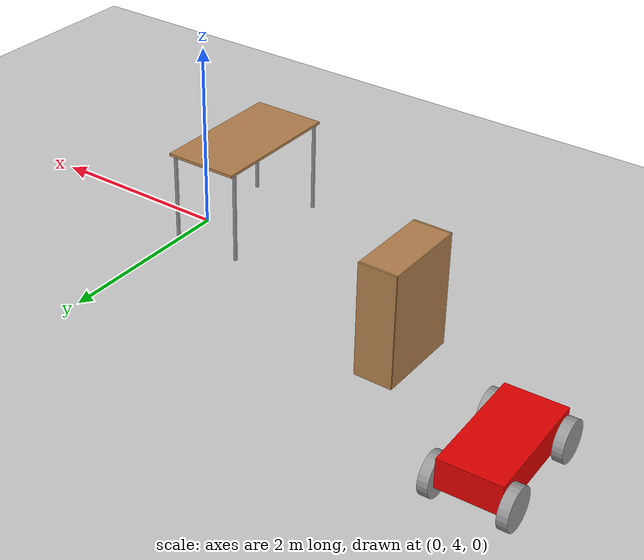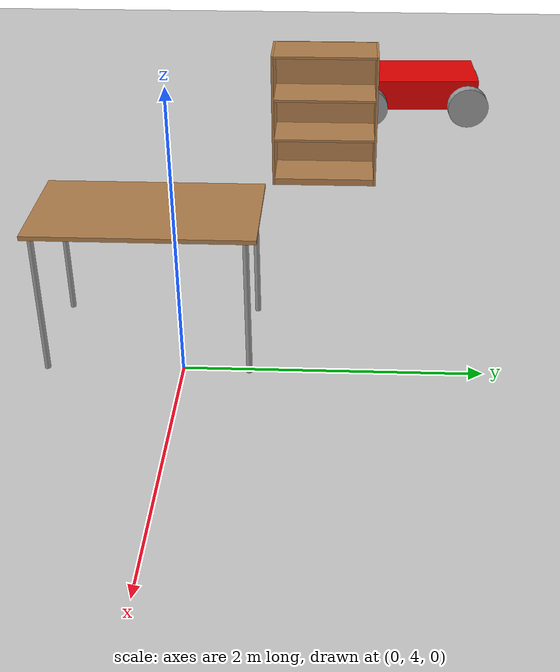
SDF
<sdf version="1.6">
 <world name="office">
  <model name="ground_plane">
   <static>1</static>
   <link name="link">
    <collision name="collision">
     <geometry><plane><normal>0 0 1</normal><size>100 100</size></plane></geometry>
     <surface><friction><ode><mu>100</mu><mu2>50</mu2></ode></friction></surface>
    </collision>
    <visual name="visual">
     <cast_shadows>0</cast_shadows>
     <geometry><plane><normal>0 0 1</normal><size>100 100</size></plane></geometry>
     <material>
      <script><uri>file://media/materials/scripts/gazebo.material</uri><name>Gazebo/Grey</name></script>
     </material>
    </visual>
   </link>
  </model>
  <model name="car">
   <pose>-4.53314 5.76816 0.211113 2e-06 1e-06 -1.53251</pose>
   <link name="link_0">
    <pose>0 -2e-06 0.088889 0 -0 0</pose>
    <inertial>
     <mass>1</mass>
     <inertia>
      <ixx>0.166667</ixx>
      <ixy>0</ixy>
      <ixz>0</ixz>
      <iyy>0.166667</iyy>
      <iyz>0</iyz>
      <izz>0.166667</izz>
     </inertia>
    </inertial>
    <visual name="visual">
     <geometry><box><size>1.2 0.6 0.3</size></box></geometry>
     <material>
      <lighting>1</lighting>
      <script><uri>file://media/materials/scripts/gazebo.material</uri><name>Gazebo/Grey</name></script>
      <shader type="pixel"><normal_map>__default__</normal_map></shader>
      <ambient>0.9 0 0 1</ambient>
      <diffuse>0.7 0.7 0.7 1</diffuse>
      <specular>0.01 0.01 0.01 1</specular>
      <emissive>0 0 0 1</emissive>
     </material>
    </visual>
    <collision name="collision">
     <geometry><box><size>1.2 0.6 0.3</size></box></geometry>
     <surface>
      <friction>
       <ode><mu>1</mu><mu2>1</mu2><fdir1>0 0 0</fdir1><slip1>0</slip1><slip2>0</slip2></ode>
       <torsional>
        <coefficient>1</coefficient>
        <patch_radius>0</patch_radius>
        <surface_radius>0</surface_radius>
        <use_patch_radius>1</use_patch_radius>
        <ode><slip>0</slip></ode>
       </torsional>
      </friction>
      <bounce><restitution_coefficient>0</restitution_coefficient><threshold>1e+06</threshold></bounce>
      <contact>
       <collide_without_contact>0</collide_without_contact>
       <collide_without_contact_bitmask>1</collide_without_contact_bitmask>
       <collide_bitmask>1</collide_bitmask>
       <ode>
        <soft_cfm>0</soft_cfm>
        <soft_erp>0.2</soft_erp>
        <kp>1e+13</kp>
        <kd>1</kd>
        <max_vel>0.01</max_vel>
        <min_depth>0</min_depth>
       </ode>
       <bullet>
        <split_impulse>1</split_impulse>
        <split_impulse_penetration_threshold>-0.01</split_impulse_penetration_threshold>
        <soft_cfm>0</soft_cfm>
        <soft_erp>0.2</soft_erp>
        <kp>1e+13</kp>
        <kd>1</kd>
       </bullet>
      </contact>
     </surface>
    </collision>
   </link>
   <link name="link_1">
    <pose>-0.5 -0.250002 -0.011111 0 -0 0</pose>
    <inertial>
     <mass>1</mass>
     <inertia>
      <ixx>0.166667</ixx>
      <ixy>0</ixy>
      <ixz>0</ixz>
      <iyy>0.166667</iyy>
      <iyz>0</iyz>
      <izz>0.166667</izz>
     </inertia>
    </inertial>
    <visual name="visual">
     <geometry><box><size>0.1 0.1 0.1</size></box></geometry>
     <material>
      <lighting>1</lighting>
      <script><uri>file://media/materials/scripts/gazebo.material</uri><name>Gazebo/Grey</name></script>
      <shader type="pixel"><normal_map>__default__</normal_map></shader>
      <ambient>0.01 0.01 0.01 1</ambient>
      <diffuse>0.7 0.7 0.7 1</diffuse>
      <specular>0.01 0.01 0.01 1</specular>
      <emissive>0 0 0 1</emissive>
     </material>
    </visual>
    <collision name="collision">
     <geometry><box><size>0.1 0.1 0.1</size></box></geometry>
     <surface>
      <friction>
       <ode><mu>1</mu><mu2>1</mu2><fdir1>0 0 0</fdir1><slip1>0</slip1><slip2>0</slip2></ode>
       <torsional>
        <coefficient>1</coefficient>
        <patch_radius>0</patch_radius>
        <surface_radius>0</surface_radius>
        <use_patch_radius>1</use_patch_radius>
        <ode><slip>0</slip></ode>
       </torsional>
      </friction>
      <bounce><restitution_coefficient>0</restitution_coefficient><threshold>1e+06</threshold></bounce>
      <contact>
       <collide_without_contact>0</collide_without_contact>
       <collide_without_contact_bitmask>1</collide_without_contact_bitmask>
       <collide_bitmask>1</collide_bitmask>
       <ode>
        <soft_cfm>0</soft_cfm>
        <soft_erp>0.2</soft_erp>
        <kp>1e+13</kp>
        <kd>1</kd>
        <max_vel>0.01</max_vel>
        <min_depth>0</min_depth>
       </ode>
       <bullet>
        <split_impulse>1</split_impulse>
        <split_impulse_penetration_threshold>-0.01</split_impulse_penetration_threshold>
        <soft_cfm>0</soft_cfm>
        <soft_erp>0.2</soft_erp>
        <kp>1e+13</kp>
        <kd>1</kd>
       </bullet>
      </contact>
     </surface>
    </collision>
   </link>
   <link name="link_1_clone">
    <pose>-0.5 0.249998 -0.011111 0 -0 0</pose>
    <inertial>
     <mass>1</mass>
     <inertia>
      <ixx>0.166667</ixx>
      <ixy>0</ixy>
      <ixz>0</ixz>
      <iyy>0.166667</iyy>
      <iyz>0</iyz>
      <izz>0.166667</izz>
     </inertia>
    </inertial>
    <visual name="visual">
     <geometry><box><size>0.1 0.1 0.1</size></box></geometry>
     <material>
      <lighting>1</lighting>
      <script><uri>file://media/materials/scripts/gazebo.material</uri><name>Gazebo/Grey</name></script>
      <shader type="pixel"><normal_map>__default__</normal_map></shader>
      <ambient>0.01 0.01 0.01 1</ambient>
      <diffuse>0.7 0.7 0.7 1</diffuse>
      <specular>0.01 0.01 0.01 1</specular>
      <emissive>0 0 0 1</emissive>
     </material>
    </visual>
    <collision name="collision">
     <geometry><box><size>0.1 0.1 0.1</size></box></geometry>
     <surface>
      <friction>
       <ode><mu>1</mu><mu2>1</mu2><fdir1>0 0 0</fdir1><slip1>0</slip1><slip2>0</slip2></ode>
       <torsional>
        <coefficient>1</coefficient>
        <patch_radius>0</patch_radius>
        <surface_radius>0</surface_radius>
        <use_patch_radius>1</use_patch_radius>
        <ode><slip>0</slip></ode>
       </torsional>
      </friction>
      <bounce><restitution_coefficient>0</restitution_coefficient><threshold>1e+06</threshold></bounce>
      <contact>
       <collide_without_contact>0</collide_without_contact>
       <collide_without_contact_bitmask>1</collide_without_contact_bitmask>
       <collide_bitmask>1</collide_bitmask>
       <ode>
        <soft_cfm>0</soft_cfm>
        <soft_erp>0.2</soft_erp>
        <kp>1e+13</kp>
        <kd>1</kd>
        <max_vel>0.01</max_vel>
        <min_depth>0</min_depth>
       </ode>
       <bullet>
        <split_impulse>1</split_impulse>
        <split_impulse_penetration_threshold>-0.01</split_impulse_penetration_threshold>
        <soft_cfm>0</soft_cfm>
        <soft_erp>0.2</soft_erp>
        <kp>1e+13</kp>
        <kd>1</kd>
       </bullet>
      </contact>
     </surface>
    </collision>
   </link>
   <link name="link_1_clone_0">
    <pose>0.5 -0.250002 -0.011111 0 -0 0</pose>
    <inertial>
     <mass>1</mass>
     <inertia>
      <ixx>0.166667</ixx>
      <ixy>0</ixy>
      <ixz>0</ixz>
      <iyy>0.166667</iyy>
      <iyz>0</iyz>
      <izz>0.166667</izz>
     </inertia>
    </inertial>
    <visual name="visual">
     <geometry><box><size>0.1 0.1 0.1</size></box></geometry>
     <material>
      <lighting>1</lighting>
      <script><uri>file://media/materials/scripts/gazebo.material</uri><name>Gazebo/Grey</name></script>
      <shader type="pixel"><normal_map>__default__</normal_map></shader>
      <ambient>0.01 0.01 0.01 1</ambient>
      <diffuse>0.7 0.7 0.7 1</diffuse>
      <specular>0.01 0.01 0.01 1</specular>
      <emissive>0 0 0 1</emissive>
     </material>
    </visual>
    <collision name="collision">
     <geometry><box><size>0.1 0.1 0.1</size></box></geometry>
     <surface>
      <friction>
       <ode><mu>1</mu><mu2>1</mu2><fdir1>0 0 0</fdir1><slip1>0</slip1><slip2>0</slip2></ode>
       <torsional>
        <coefficient>1</coefficient>
        <patch_radius>0</patch_radius>
        <surface_radius>0</surface_radius>
        <use_patch_radius>1</use_patch_radius>
        <ode><slip>0</slip></ode>
       </torsional>
      </friction>
      <bounce><restitution_coefficient>0</restitution_coefficient><threshold>1e+06</threshold></bounce>
      <contact>
       <collide_without_contact>0</collide_without_contact>
       <collide_without_contact_bitmask>1</collide_without_contact_bitmask>
       <collide_bitmask>1</collide_bitmask>
       <ode>
        <soft_cfm>0</soft_cfm>
        <soft_erp>0.2</soft_erp>
        <kp>1e+13</kp>
        <kd>1</kd>
        <max_vel>0.01</max_vel>
        <min_depth>0</min_depth>
       </ode>
       <bullet>
        <split_impulse>1</split_impulse>
        <split_impulse_penetration_threshold>-0.01</split_impulse_penetration_threshold>
        <soft_cfm>0</soft_cfm>
        <soft_erp>0.2</soft_erp>
        <kp>1e+13</kp>
        <kd>1</kd>
       </bullet>
      </contact>
     </surface>
    </collision>
   </link>
   <link name="link_1_clone_1">
    <pose>0.5 0.249998 -0.011111 0 -0 0</pose>
    <inertial>
     <mass>1</mass>
     <inertia>
      <ixx>0.166667</ixx>
      <ixy>0</ixy>
      <ixz>0</ixz>
      <iyy>0.166667</iyy>
      <iyz>0</iyz>
      <izz>0.166667</izz>
     </inertia>
    </inertial>
    <visual name="visual">
     <geometry><box><size>0.1 0.1 0.1</size></box></geometry>
     <material>
      <lighting>1</lighting>
      <script><uri>file://media/materials/scripts/gazebo.material</uri><name>Gazebo/Grey</name></script>
      <shader type="pixel"><normal_map>__default__</normal_map></shader>
      <ambient>0.01 0.01 0.01 1</ambient>
      <diffuse>0.7 0.7 0.7 1</diffuse>
      <specular>0.01 0.01 0.01 1</specular>
      <emissive>0 0 0 1</emissive>
     </material>
    </visual>
    <collision name="collision">
     <geometry><box><size>0.1 0.1 0.1</size></box></geometry>
     <surface>
      <friction>
       <ode><mu>1</mu><mu2>1</mu2><fdir1>0 0 0</fdir1><slip1>0</slip1><slip2>0</slip2></ode>
       <torsional>
        <coefficient>1</coefficient>
        <patch_radius>0</patch_radius>
        <surface_radius>0</surface_radius>
        <use_patch_radius>1</use_patch_radius>
        <ode><slip>0</slip></ode>
       </torsional>
      </friction>
      <bounce><restitution_coefficient>0</restitution_coefficient><threshold>1e+06</threshold></bounce>
      <contact>
       <collide_without_contact>0</collide_without_contact>
       <collide_without_contact_bitmask>1</collide_without_contact_bitmask>
       <collide_bitmask>1</collide_bitmask>
       <ode>
        <soft_cfm>0</soft_cfm>
        <soft_erp>0.2</soft_erp>
        <kp>1e+13</kp>
        <kd>1</kd>
        <max_vel>0.01</max_vel>
        <min_depth>0</min_depth>
       </ode>
       <bullet>
        <split_impulse>1</split_impulse>
        <split_impulse_penetration_threshold>-0.01</split_impulse_penetration_threshold>
        <soft_cfm>0</soft_cfm>
        <soft_erp>0.2</soft_erp>
        <kp>1e+13</kp>
        <kd>1</kd>
       </bullet>
      </contact>
     </surface>
    </collision>
   </link>
   <link name="link_2">
    <pose>-0.5 -0.350002 -0.011111 0 -0 0</pose>
    <inertial>
     <mass>1</mass>
     <inertia><ixx>0.145833</ixx><ixy>0</ixy><ixz>0</ixz><iyy>0.145833</iyy><iyz>0</iyz><izz>0.125</izz></inertia>
    </inertial>
    <visual name="visual">
     <pose>0 0 0 1.5707 -0 0</pose>
     <geometry><cylinder><radius>0.2</radius><length>0.1</length></cylinder></geometry>
     <material>
      <lighting>1</lighting>
      <script><uri>file://media/materials/scripts/gazebo.material</uri><name>Gazebo/Grey</name></script>
      <shader type="pixel"><normal_map>__default__</normal_map></shader>
      <ambient>0.01 0.01 0.01 1</ambient>
      <diffuse>0.7 0.7 0.7 1</diffuse>
      <specular>0.01 0.01 0.01 1</specular>
      <emissive>0 0 0 1</emissive>
     </material>
    </visual>
    <collision name="collision">
     <pose>0 0 0 1.5707 -0 0</pose>
     <geometry><cylinder><radius>0.2</radius><length>0.1</length></cylinder></geometry>
     <surface>
      <friction>
       <ode><mu>1</mu><mu2>1</mu2><fdir1>0 0 0</fdir1><slip1>0</slip1><slip2>0</slip2></ode>
       <torsional>
        <coefficient>1</coefficient>
        <patch_radius>0</patch_radius>
        <surface_radius>0</surface_radius>
        <use_patch_radius>1</use_patch_radius>
        <ode><slip>0</slip></ode>
       </torsional>
      </friction>
      <bounce><restitution_coefficient>0</restitution_coefficient><threshold>1e+06</threshold></bounce>
      <contact>
       <collide_without_contact>0</collide_without_contact>
       <collide_without_contact_bitmask>1</collide_without_contact_bitmask>
       <collide_bitmask>1</collide_bitmask>
       <ode>
        <soft_cfm>0</soft_cfm>
        <soft_erp>0.2</soft_erp>
        <kp>1e+13</kp>
        <kd>1</kd>
        <max_vel>0.01</max_vel>
        <min_depth>0</min_depth>
       </ode>
       <bullet>
        <split_impulse>1</split_impulse>
        <split_impulse_penetration_threshold>-0.01</split_impulse_penetration_threshold>
        <soft_cfm>0</soft_cfm>
        <soft_erp>0.2</soft_erp>
        <kp>1e+13</kp>
        <kd>1</kd>
       </bullet>
      </contact>
     </surface>
    </collision>
   </link>
   <link name="link_2_clone">
    <pose>-0.5 0.349998 -0.011111 0 -0 0</pose>
    <inertial>
     <mass>1</mass>
     <inertia><ixx>0.145833</ixx><ixy>0</ixy><ixz>0</ixz><iyy>0.145833</iyy><iyz>0</iyz><izz>0.125</izz></inertia>
    </inertial>
    <visual name="visual">
     <pose>0 0 0 1.5707 -0 0</pose>
     <geometry><cylinder><radius>0.2</radius><length>0.1</length></cylinder></geometry>
     <material>
      <lighting>1</lighting>
      <script><uri>file://media/materials/scripts/gazebo.material</uri><name>Gazebo/Grey</name></script>
      <shader type="pixel"><normal_map>__default__</normal_map></shader>
      <ambient>0.01 0.01 0.01 1</ambient>
      <diffuse>0.7 0.7 0.7 1</diffuse>
      <specular>0.01 0.01 0.01 1</specular>
      <emissive>0 0 0 1</emissive>
     </material>
    </visual>
    <collision name="collision">
     <pose>0 0 0 1.5707 -0 0</pose>
     <geometry><cylinder><radius>0.2</radius><length>0.1</length></cylinder></geometry>
     <surface>
      <friction>
       <ode><mu>1</mu><mu2>1</mu2><fdir1>0 0 0</fdir1><slip1>0</slip1><slip2>0</slip2></ode>
       <torsional>
        <coefficient>1</coefficient>
        <patch_radius>0</patch_radius>
        <surface_radius>0</surface_radius>
        <use_patch_radius>1</use_patch_radius>
        <ode><slip>0</slip></ode>
       </torsional>
      </friction>
      <bounce><restitution_coefficient>0</restitution_coefficient><threshold>1e+06</threshold></bounce>
      <contact>
       <collide_without_contact>0</collide_without_contact>
       <collide_without_contact_bitmask>1</collide_without_contact_bitmask>
       <collide_bitmask>1</collide_bitmask>
       <ode>
        <soft_cfm>0</soft_cfm>
        <soft_erp>0.2</soft_erp>
        <kp>1e+13</kp>
        <kd>1</kd>
        <max_vel>0.01</max_vel>
        <min_depth>0</min_depth>
       </ode>
       <bullet>
        <split_impulse>1</split_impulse>
        <split_impulse_penetration_threshold>-0.01</split_impulse_penetration_threshold>
        <soft_cfm>0</soft_cfm>
        <soft_erp>0.2</soft_erp>
        <kp>1e+13</kp>
        <kd>1</kd>
       </bullet>
      </contact>
     </surface>
    </collision>
   </link>
   <link name="link_2_clone_0">
    <pose>0.5 -0.350021 -0.011111 0 -0 0</pose>
    <inertial>
     <mass>1</mass>
     <inertia><ixx>0.145833</ixx><ixy>0</ixy><ixz>0</ixz><iyy>0.145833</iyy><iyz>0</iyz><izz>0.125</izz></inertia>
    </inertial>
    <visual name="visual">
     <pose>0 0 0 1.5707 -0 0</pose>
     <geometry><cylinder><radius>0.2</radius><length>0.1</length></cylinder></geometry>
     <material>
      <lighting>1</lighting>
      <script><uri>file://media/materials/scripts/gazebo.material</uri><name>Gazebo/Grey</name></script>
      <shader type="pixel"><normal_map>__default__</normal_map></shader>
      <ambient>0.01 0.01 0.01 1</ambient>
      <diffuse>0.7 0.7 0.7 1</diffuse>
      <specular>0.01 0.01 0.01 1</specular>
      <emissive>0 0 0 1</emissive>
     </material>
    </visual>
    <collision name="collision">
     <pose>0 0 0 1.5707 -0 0</pose>
     <geometry><cylinder><radius>0.2</radius><length>0.1</length></cylinder></geometry>
     <surface>
      <friction>
       <ode><mu>1</mu><mu2>1</mu2><fdir1>0 0 0</fdir1><slip1>0</slip1><slip2>0</slip2></ode>
       <torsional>
        <coefficient>1</coefficient>
        <patch_radius>0</patch_radius>
        <surface_radius>0</surface_radius>
        <use_patch_radius>1</use_patch_radius>
        <ode><slip>0</slip></ode>
       </torsional>
      </friction>
      <bounce><restitution_coefficient>0</restitution_coefficient><threshold>1e+06</threshold></bounce>
      <contact>
       <collide_without_contact>0</collide_without_contact>
       <collide_without_contact_bitmask>1</collide_without_contact_bitmask>
       <collide_bitmask>1</collide_bitmask>
       <ode>
        <soft_cfm>0</soft_cfm>
        <soft_erp>0.2</soft_erp>
        <kp>1e+13</kp>
        <kd>1</kd>
        <max_vel>0.01</max_vel>
        <min_depth>0</min_depth>
       </ode>
       <bullet>
        <split_impulse>1</split_impulse>
        <split_impulse_penetration_threshold>-0.01</split_impulse_penetration_threshold>
        <soft_cfm>0</soft_cfm>
        <soft_erp>0.2</soft_erp>
        <kp>1e+13</kp>
        <kd>1</kd>
       </bullet>
      </contact>
     </surface>
    </collision>
   </link>
   <link name="link_2_clone_1">
    <pose>0.5 0.350017 -0.011111 0 -0 0</pose>
    <inertial>
     <mass>1</mass>
     <inertia><ixx>0.145833</ixx><ixy>0</ixy><ixz>0</ixz><iyy>0.145833</iyy><iyz>0</iyz><izz>0.125</izz></inertia>
    </inertial>
    <visual name="visual">
     <pose>0 0 0 1.5707 -0 0</pose>
     <geometry><cylinder><radius>0.2</radius><length>0.1</length></cylinder></geometry>
     <material>
      <lighting>1</lighting>
      <script><uri>file://media/materials/scripts/gazebo.material</uri><name>Gazebo/Grey</name></script>
      <shader type="pixel"><normal_map>__default__</normal_map></shader>
      <ambient>0.01 0.01 0.01 1</ambient>
      <diffuse>0.7 0.7 0.7 1</diffuse>
      <specular>0.01 0.01 0.01 1</specular>
      <emissive>0 0 0 1</emissive>
     </material>
    </visual>
    <collision name="collision">
     <pose>0 0 0 1.5707 -0 0</pose>
     <geometry><cylinder><radius>0.2</radius><length>0.1</length></cylinder></geometry>
     <surface>
      <friction>
       <ode><mu>1</mu><mu2>1</mu2><fdir1>0 0 0</fdir1><slip1>0</slip1><slip2>0</slip2></ode>
       <torsional>
        <coefficient>1</coefficient>
        <patch_radius>0</patch_radius>
        <surface_radius>0</surface_radius>
        <use_patch_radius>1</use_patch_radius>
        <ode><slip>0</slip></ode>
       </torsional>
      </friction>
      <bounce><restitution_coefficient>0</restitution_coefficient><threshold>1e+06</threshold></bounce>
      <contact>
       <collide_without_contact>0</collide_without_contact>
       <collide_without_contact_bitmask>1</collide_without_contact_bitmask>
       <collide_bitmask>1</collide_bitmask>
       <ode>
        <soft_cfm>0</soft_cfm>
        <soft_erp>0.2</soft_erp>
        <kp>1e+13</kp>
        <kd>1</kd>
        <max_vel>0.01</max_vel>
        <min_depth>0</min_depth>
       </ode>
       <bullet>
        <split_impulse>1</split_impulse>
        <split_impulse_penetration_threshold>-0.01</split_impulse_penetration_threshold>
        <soft_cfm>0</soft_cfm>
        <soft_erp>0.2</soft_erp>
        <kp>1e+13</kp>
        <kd>1</kd>
       </bullet>
      </contact>
     </surface>
    </collision>
   </link>
   <joint name="link_0_JOINT_0" type="fixed">
    <parent>link_0</parent>
    <child>link_1</child>
    <physics>
     <ode><limit><cfm>0</cfm><erp>0.2</erp></limit><suspension><cfm>0</cfm><erp>0.2</erp></suspension></ode>
    </physics>
   </joint>
   <joint name="link_0_JOINT_1" type="fixed">
    <parent>link_0</parent>
    <child>link_1_clone</child>
    <physics>
     <ode><limit><cfm>0</cfm><erp>0.2</erp></limit><suspension><cfm>0</cfm><erp>0.2</erp></suspension></ode>
    </physics>
   </joint>
   <joint name="link_0_JOINT_2" type="fixed">
    <parent>link_0</parent>
    <child>link_1_clone_0</child>
    <physics>
     <ode><limit><cfm>0</cfm><erp>0.2</erp></limit><suspension><cfm>0</cfm><erp>0.2</erp></suspension></ode>
    </physics>
   </joint>
   <joint name="link_0_JOINT_3" type="fixed">
    <parent>link_0</parent>
    <child>link_1_clone_1</child>
    <physics>
     <ode><limit><cfm>0</cfm><erp>0.2</erp></limit><suspension><cfm>0</cfm><erp>0.2</erp></suspension></ode>
    </physics>
   </joint>
   <joint name="link_1_JOINT_4" type="revolute">
    <parent>link_1</parent>
    <child>link_2</child>
    <axis>
     <xyz>0 1 0</xyz>
     <use_parent_model_frame>0</use_parent_model_frame>
     <limit>
      <lower>-1.79769e+308</lower>
      <upper>1.79769e+308</upper>
      <effort>-1</effort>
      <velocity>-1</velocity>
     </limit>
     <dynamics>
      <spring_reference>0</spring_reference>
      <spring_stiffness>0</spring_stiffness>
      <damping>0</damping>
      <friction>0</friction>
     </dynamics>
    </axis>
    <physics>
     <ode><limit><cfm>0</cfm><erp>0.2</erp></limit><suspension><cfm>0</cfm><erp>0.2</erp></suspension></ode>
    </physics>
   </joint>
   <joint name="link_1_clone_0_JOINT_7" type="revolute">
    <parent>link_1_clone_0</parent>
    <child>link_2_clone_0</child>
    <axis>
     <xyz>0 1 0</xyz>
     <use_parent_model_frame>0</use_parent_model_frame>
     <limit>
      <lower>-1.79769e+308</lower>
      <upper>1.79769e+308</upper>
      <effort>-1</effort>
      <velocity>-1</velocity>
     </limit>
     <dynamics>
      <spring_reference>0</spring_reference>
      <spring_stiffness>0</spring_stiffness>
      <damping>0</damping>
     </dynamics>
    </axis>
    <physics>
     <ode><limit><cfm>0</cfm><erp>0.2</erp></limit><suspension><cfm>0</cfm><erp>0.2</erp></suspension></ode>
    </physics>
   </joint>
   <joint name="link_1_clone_1_JOINT_8" type="revolute">
    <parent>link_1_clone_1</parent>
    <child>link_2_clone_1</child>
    <pose>0 0 0 0 0.03 0.02</pose>
    <axis>
     <xyz>0 1 0</xyz>
     <use_parent_model_frame>0</use_parent_model_frame>
     <limit>
      <lower>-1.79769e+308</lower>
      <upper>1.79769e+308</upper>
      <effort>-1</effort>
      <velocity>-1</velocity>
     </limit>
     <dynamics>
      <spring_reference>0</spring_reference>
      <spring_stiffness>0</spring_stiffness>
      <damping>0</damping>
      <friction>0</friction>
     </dynamics>
    </axis>
    <physics>
     <ode><limit><cfm>0</cfm><erp>0.2</erp></limit><suspension><cfm>0</cfm><erp>0.2</erp></suspension></ode>
    </physics>
   </joint>
   <joint name="link_1_clone_JOINT_6" type="revolute">
    <parent>link_1_clone</parent>
    <child>link_2_clone</child>
    <axis>
     <xyz>0 1 0</xyz>
     <use_parent_model_frame>0</use_parent_model_frame>
     <limit>
      <lower>-1.79769e+308</lower>
      <upper>1.79769e+308</upper>
      <effort>-1</effort>
      <velocity>-1</velocity>
     </limit>
     <dynamics>
      <spring_reference>0</spring_reference>
      <spring_stiffness>0</spring_stiffness>
      <damping>0</damping>
     </dynamics>
    </axis>
    <physics>
     <ode><limit><cfm>0</cfm><erp>0.2</erp></limit><suspension><cfm>0</cfm><erp>0.2</erp></suspension></ode>
    </physics>
   </joint>
   <static>0</static>
  </model>
  <model name="bookshelf">
   <static>1</static>
   <link name="link">
    <inertial><mass>1</mass></inertial>
    <collision name="back">
     <pose>0 0.005 0.6 0 -0 0</pose>
     <geometry><box><size>0.9 0.01 1.2</size></box></geometry>
    </collision>
    <visual name="visual1">
     <pose>0 0.005 0.6 0 -0 0</pose>
     <geometry><box><size>0.9 0.01 1.2</size></box></geometry>
     <material>
      <script><uri>file://media/materials/scripts/gazebo.material</uri><name>Gazebo/Wood</name></script>
     </material>
    </visual>
    <collision name="left_side">
     <pose>0.45 -0.195 0.6 0 -0 0</pose>
     <geometry><box><size>0.02 0.4 1.2</size></box></geometry>
    </collision>
    <visual name="visual2">
     <pose>0.45 -0.195 0.6 0 -0 0</pose>
     <geometry><box><size>0.02 0.4 1.2</size></box></geometry>
     <material>
      <script><uri>file://media/materials/scripts/gazebo.material</uri><name>Gazebo/Wood</name></script>
     </material>
    </visual>
    <collision name="right_side">
     <pose>-0.45 -0.195 0.6 0 -0 0</pose>
     <geometry><box><size>0.02 0.4 1.2</size></box></geometry>
    </collision>
    <visual name="visual3">
     <pose>-0.45 -0.195 0.6 0 -0 0</pose>
     <geometry><box><size>0.02 0.4 1.2</size></box></geometry>
     <material>
      <script><uri>file://media/materials/scripts/gazebo.material</uri><name>Gazebo/Wood</name></script>
     </material>
    </visual>
    <collision name="bottom">
     <pose>0 -0.195 0.03 0 -0 0</pose>
     <geometry><box><size>0.88 0.4 0.06</size></box></geometry>
    </collision>
    <visual name="visual4">
     <pose>0 -0.195 0.03 0 -0 0</pose>
     <geometry><box><size>0.88 0.4 0.06</size></box></geometry>
     <material>
      <script><uri>file://media/materials/scripts/gazebo.material</uri><name>Gazebo/Wood</name></script>
     </material>
    </visual>
    <collision name="top">
     <pose>0 -0.195 1.19 0 -0 0</pose>
     <geometry><box><size>0.88 0.4 0.02</size></box></geometry>
    </collision>
    <visual name="visual5">
     <pose>0 -0.195 1.19 0 -0 0</pose>
     <geometry><box><size>0.88 0.4 0.02</size></box></geometry>
     <material>
      <script><uri>file://media/materials/scripts/gazebo.material</uri><name>Gazebo/Wood</name></script>
     </material>
    </visual>
    <collision name="low_shelf">
     <pose>0 -0.195 0.43 0 -0 0</pose>
     <geometry><box><size>0.88 0.4 0.02</size></box></geometry>
    </collision>
    <visual name="visual6">
     <pose>0 -0.195 0.43 0 -0 0</pose>
     <geometry><box><size>0.88 0.4 0.02</size></box></geometry>
     <material>
      <script><uri>file://media/materials/scripts/gazebo.material</uri><name>Gazebo/Wood</name></script>
     </material>
    </visual>
    <collision name="high_shelf">
     <pose>0 -0.195 0.8 0 -0 0</pose>
     <geometry><box><size>0.88 0.4 0.02</size></box></geometry>
    </collision>
    <visual name="visual7">
     <pose>0 -0.195 0.8 0 -0 0</pose>
     <geometry><box><size>0.88 0.4 0.02</size></box></geometry>
     <material>
      <script><uri>file://media/materials/scripts/gazebo.material</uri><name>Gazebo/Wood</name></script>
     </material>
    </visual>
   </link>
   <pose>-3.18831 4.88012 0 0 -0 1.57254</pose>
  </model>
  <model name="table_1">
   <static>1</static>
   <link name="link">
    <collision name="surface">
     <pose>0 0 1 0 -0 0</pose>
     <geometry><box><size>1.5 0.8 0.03</size></box></geometry>
     <surface><friction><ode><mu>0.6</mu><mu2>0.6</mu2></ode></friction></surface>
    </collision>
    <visual name="visual1">
     <pose>0 0 1 0 -0 0</pose>
     <geometry><box><size>1.5 0.8 0.03</size></box></geometry>
     <material>
      <script><uri>file://media/materials/scripts/gazebo.material</uri><name>Gazebo/Wood</name></script>
     </material>
    </visual>
    <collision name="front_left_leg">
     <pose>0.68 0.38 0.5 0 -0 0</pose>
     <geometry><cylinder><radius>0.02</radius><length>1</length></cylinder></geometry>
    </collision>
    <visual name="front_left_leg">
     <pose>0.68 0.38 0.5 0 -0 0</pose>
     <geometry><cylinder><radius>0.02</radius><length>1</length></cylinder></geometry>
     <material>
      <script><uri>file://media/materials/scripts/gazebo.material</uri><name>Gazebo/Grey</name></script>
     </material>
    </visual>
    <collision name="front_right_leg">
     <pose>0.68 -0.38 0.5 0 -0 0</pose>
     <geometry><cylinder><radius>0.02</radius><length>1</length></cylinder></geometry>
    </collision>
    <visual name="front_right_leg">
     <pose>0.68 -0.38 0.5 0 -0 0</pose>
     <geometry><cylinder><radius>0.02</radius><length>1</length></cylinder></geometry>
     <material>
      <script><uri>file://media/materials/scripts/gazebo.material</uri><name>Gazebo/Grey</name></script>
     </material>
    </visual>
    <collision name="back_right_leg">
     <pose>-0.68 -0.38 0.5 0 -0 0</pose>
     <geometry><cylinder><radius>0.02</radius><length>1</length></cylinder></geometry>
    </collision>
    <visual name="back_right_leg">
     <pose>-0.68 -0.38 0.5 0 -0 0</pose>
     <geometry><cylinder><radius>0.02</radius><length>1</length></cylinder></geometry>
     <material>
      <script><uri>file://media/materials/scripts/gazebo.material</uri><name>Gazebo/Grey</name></script>
     </material>
    </visual>
    <collision name="back_left_leg">
     <pose>-0.68 0.38 0.5 0 -0 0</pose>
     <geometry><cylinder><radius>0.02</radius><length>1</length></cylinder></geometry>
    </collision>
    <visual name="back_left_leg">
     <pose>-0.68 0.38 0.5 0 -0 0</pose>
     <geometry><cylinder><radius>0.02</radius><length>1</length></cylinder></geometry>
     <material>
      <script><uri>file://media/materials/scripts/gazebo.material</uri><name>Gazebo/Grey</name></script>
     </material>
    </visual>
   </link>
   <pose>-0.352239 3.76674 0 0 -0 1.56923</pose>
  </model>
 </world>
</sdf>
